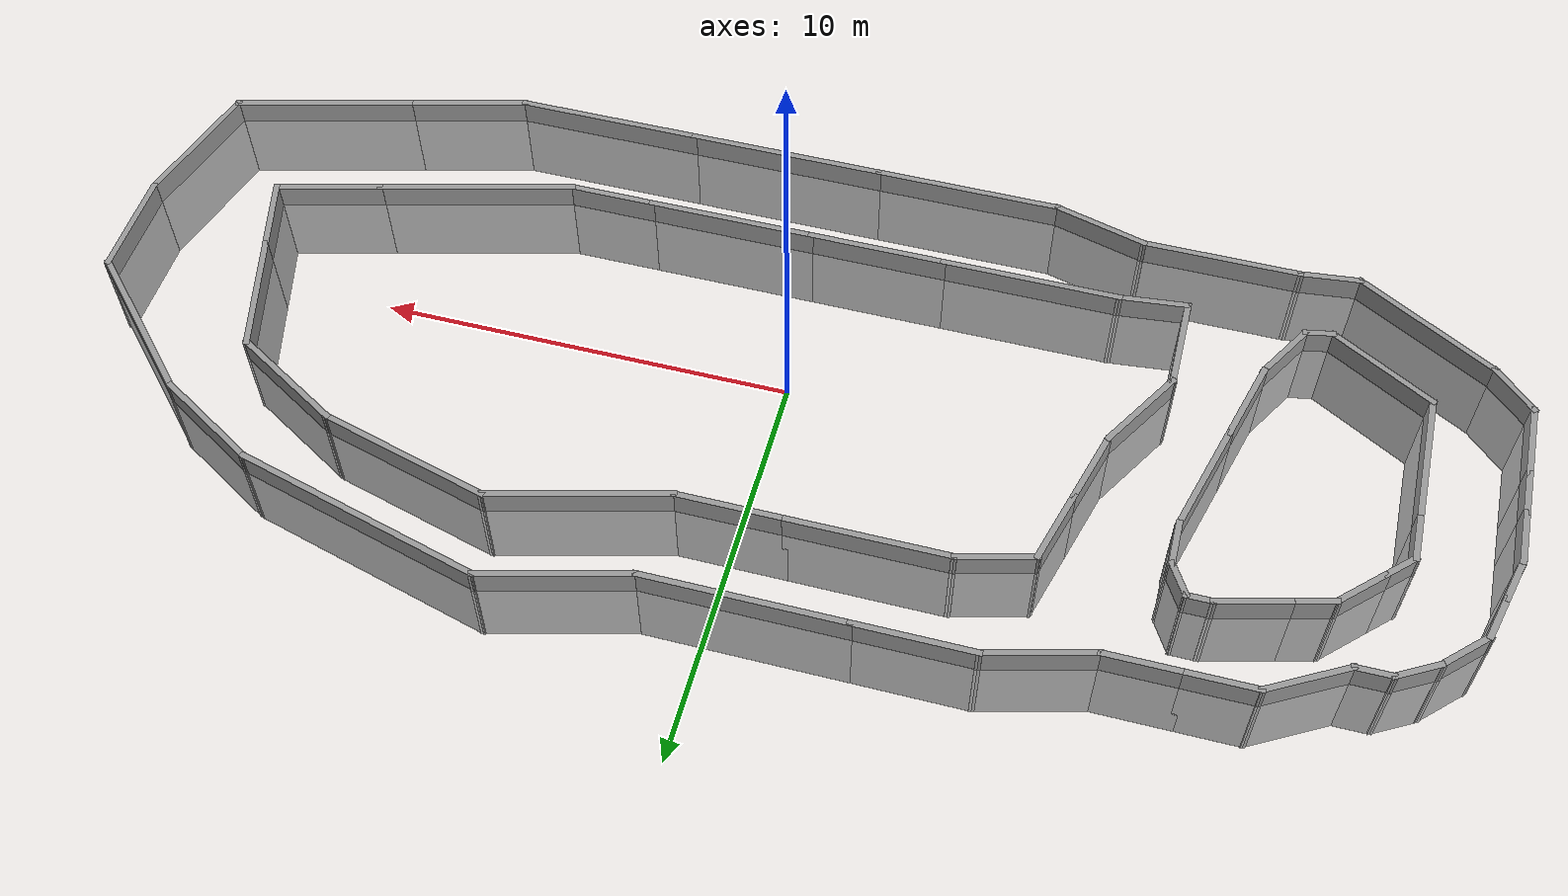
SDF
<sdf version="1.7">
 <world name="default">
  <light name="sun" type="directional">
   <pose>0 0 10 0 -0 0</pose>
   <diffuse>0.8 0.8 0.8 1</diffuse>
   <specular>0.2 0.2 0.2 1</specular>
   <attenuation>
    <range>1000</range>
    <constant>0.9</constant>
    <linear>0.01</linear>
    <quadratic>0.001</quadratic>
   </attenuation>
   <direction>-0.5 0.1 -0.9</direction>
   <spot><inner_angle>0</inner_angle><outer_angle>0</outer_angle><falloff>0</falloff></spot>
  </light>
  <model name="ground_plane">
   <static>1</static>
   <link name="link">
    <collision name="collision">
     <geometry><plane><normal>0 0 1</normal><size>100 100</size></plane></geometry>
     <surface>
      <contact><collide_bitmask>65535</collide_bitmask></contact>
      <friction><ode><mu>100</mu><mu2>50</mu2></ode></friction>
     </surface>
    </collision>
    <visual name="visual">
     <cast_shadows>0</cast_shadows>
     <geometry><plane><normal>0 0 1</normal><size>100 100</size></plane></geometry>
     <material>
      <script><uri>file://media/materials/scripts/gazebo.material</uri><name>Gazebo/Grey</name></script>
     </material>
    </visual>
   </link>
  </model>
  <gravity>0 0 -9.8</gravity>
  <magnetic_field>6e-06 2.3e-05 -4.2e-05</magnetic_field>
  <atmosphere type="adiabatic"/>
  <physics type="ode">
   <max_step_size>0.001</max_step_size>
   <real_time_factor>1</real_time_factor>
   <real_time_update_rate>1000</real_time_update_rate>
  </physics>
  <scene><ambient>0.4 0.4 0.4 1</ambient><background>0.7 0.7 0.7 1</background><shadows>1</shadows></scene>
  <spherical_coordinates>
   <surface_model>EARTH_WGS84</surface_model>
   <latitude_deg>0</latitude_deg>
   <longitude_deg>0</longitude_deg>
   <elevation>0</elevation>
   <heading_deg>0</heading_deg>
  </spherical_coordinates>
  <model name="shortcut2">
   <pose>-0.004909 0.02554 -1.92703 0 -0 0</pose>
   <link name="Wall_0">
    <collision name="Wall_0_Collision">
     <geometry><box><size>4 0.15 2.5</size></box></geometry>
     <pose>0 0 1.25 0 -0 0</pose>
    </collision>
    <visual name="Wall_0_Visual">
     <pose>0 0 1.25 0 -0 0</pose>
     <geometry><box><size>4 0.15 2.5</size></box></geometry>
     <material>
      <script><uri>file://media/materials/scripts/gazebo.material</uri><name>Gazebo/Grey</name></script>
      <ambient>1 1 1 1</ambient>
     </material>
     <meta><layer>0</layer></meta>
    </visual>
    <pose>-14.3592 -5.54717 0 0 -0 2.61799</pose>
   </link>
   <link name="Wall_1">
    <collision name="Wall_1_Collision">
     <geometry><box><size>1.5 0.15 2.5</size></box></geometry>
     <pose>0 0 1.25 0 -0 0</pose>
    </collision>
    <visual name="Wall_1_Visual">
     <pose>0 0 1.25 0 -0 0</pose>
     <geometry><box><size>1.5 0.15 2.5</size></box></geometry>
     <material>
      <script><uri>file://media/materials/scripts/gazebo.material</uri><name>Gazebo/Grey</name></script>
      <ambient>1 1 1 1</ambient>
     </material>
     <meta><layer>0</layer></meta>
    </visual>
    <pose>-16.5036 -4.10737 0 0 -0 2.35619</pose>
   </link>
   <link name="Wall_10">
    <collision name="Wall_10_Collision">
     <geometry><box><size>2.25 0.15 2.5</size></box></geometry>
     <pose>0 0 1.25 0 -0 0</pose>
    </collision>
    <visual name="Wall_10_Visual">
     <pose>0 0 1.25 0 -0 0</pose>
     <geometry><box><size>2.25 0.15 2.5</size></box></geometry>
     <material>
      <script><uri>file://media/materials/scripts/gazebo.material</uri><name>Gazebo/Grey</name></script>
      <ambient>1 1 1 1</ambient>
     </material>
     <meta><layer>0</layer></meta>
    </visual>
    <pose>-12.7449 4.82456 0 0 -0 0.523599</pose>
   </link>
   <link name="Wall_11">
    <collision name="Wall_11_Collision">
     <geometry><box><size>1.75 0.15 2.5</size></box></geometry>
     <pose>0 0 1.25 0 -0 0</pose>
    </collision>
    <visual name="Wall_11_Visual">
     <pose>0 0 1.25 0 -0 0</pose>
     <geometry><box><size>1.75 0.15 2.5</size></box></geometry>
     <material>
      <script><uri>file://media/materials/scripts/gazebo.material</uri><name>Gazebo/Grey</name></script>
      <ambient>1 1 1 1</ambient>
     </material>
     <meta><layer>0</layer></meta>
    </visual>
    <pose>-11.0356 5.34956 0 0 -0 0</pose>
   </link>
   <link name="Wall_12">
    <collision name="Wall_12_Collision">
     <geometry><box><size>2 0.15 2.5</size></box></geometry>
     <pose>0 0 1.25 0 -0 0</pose>
    </collision>
    <visual name="Wall_12_Visual">
     <pose>0 0 1.25 0 -0 0</pose>
     <geometry><box><size>2 0.15 2.5</size></box></geometry>
     <material>
      <script><uri>file://media/materials/scripts/gazebo.material</uri><name>Gazebo/Grey</name></script>
      <ambient>1 1 1 1</ambient>
     </material>
     <meta><layer>0</layer></meta>
    </visual>
    <pose>-9.31059 5.34956 0 0 -0 0</pose>
   </link>
   <link name="Wall_13">
    <collision name="Wall_13_Collision">
     <geometry><box><size>2.75 0.15 2.5</size></box></geometry>
     <pose>0 0 1.25 0 -0 0</pose>
    </collision>
    <visual name="Wall_13_Visual">
     <pose>0 0 1.25 0 -0 0</pose>
     <geometry><box><size>2.75 0.15 2.5</size></box></geometry>
     <material>
      <script><uri>file://media/materials/scripts/gazebo.material</uri><name>Gazebo/Grey</name></script>
      <ambient>1 1 1 1</ambient>
     </material>
     <meta><layer>0</layer></meta>
    </visual>
    <pose>-7.12989 5.68602 0 0 -0 0.261799</pose>
   </link>
   <link name="Wall_14">
    <collision name="Wall_14_Collision">
     <geometry><box><size>3 0.15 2.5</size></box></geometry>
     <pose>0 0 1.25 0 -0 0</pose>
    </collision>
    <visual name="Wall_14_Visual">
     <pose>0 0 1.25 0 -0 0</pose>
     <geometry><box><size>3 0.15 2.5</size></box></geometry>
     <material>
      <script><uri>file://media/materials/scripts/gazebo.material</uri><name>Gazebo/Grey</name></script>
      <ambient>1 1 1 1</ambient>
     </material>
     <meta><layer>0</layer></meta>
    </visual>
    <pose>-4.44918 6.02248 0 0 -0 0</pose>
   </link>
   <link name="Wall_15">
    <collision name="Wall_15_Collision">
     <geometry><box><size>5 0.15 2.5</size></box></geometry>
     <pose>0 0 1.25 0 -0 0</pose>
    </collision>
    <visual name="Wall_15_Visual">
     <pose>0 0 1.25 0 -0 0</pose>
     <geometry><box><size>5 0.15 2.5</size></box></geometry>
     <material>
      <script><uri>file://media/materials/scripts/gazebo.material</uri><name>Gazebo/Grey</name></script>
      <ambient>1 1 1 1</ambient>
     </material>
     <meta><layer>0</layer></meta>
    </visual>
    <pose>-0.599183 6.02248 0 0 -0 0</pose>
   </link>
   <link name="Wall_16">
    <collision name="Wall_16_Collision">
     <geometry><box><size>3.75 0.15 2.5</size></box></geometry>
     <pose>0 0 1.25 0 -0 0</pose>
    </collision>
    <visual name="Wall_16_Visual">
     <pose>0 0 1.25 0 -0 0</pose>
     <geometry><box><size>3.75 0.15 2.5</size></box></geometry>
     <material>
      <script><uri>file://media/materials/scripts/gazebo.material</uri><name>Gazebo/Grey</name></script>
      <ambient>1 1 1 1</ambient>
     </material>
     <meta><layer>0</layer></meta>
    </visual>
    <pose>3.56448 6.48836 0 0 -0 0.261799</pose>
   </link>
   <link name="Wall_17">
    <collision name="Wall_17_Collision">
     <geometry><box><size>6.5 0.15 2.5</size></box></geometry>
     <pose>0 0 1.25 0 -0 0</pose>
    </collision>
    <visual name="Wall_17_Visual">
     <pose>0 0 1.25 0 -0 0</pose>
     <geometry><box><size>6.5 0.15 2.5</size></box></geometry>
     <material>
      <script><uri>file://media/materials/scripts/gazebo.material</uri><name>Gazebo/Grey</name></script>
      <ambient>1 1 1 1</ambient>
     </material>
     <meta><layer>0</layer></meta>
    </visual>
    <pose>8.36997 6.13248 0 0 -0 -0.261799</pose>
   </link>
   <link name="Wall_18">
    <collision name="Wall_18_Collision">
     <geometry><box><size>3 0.15 2.5</size></box></geometry>
     <pose>0 0 1.25 0 -0 0</pose>
    </collision>
    <visual name="Wall_18_Visual">
     <pose>0 0 1.25 0 -0 0</pose>
     <geometry><box><size>3 0.15 2.5</size></box></geometry>
     <material>
      <script><uri>file://media/materials/scripts/gazebo.material</uri><name>Gazebo/Grey</name></script>
      <ambient>1 1 1 1</ambient>
     </material>
     <meta><layer>0</layer></meta>
    </visual>
    <pose>12.6709 4.59823 0 0 -0 -0.523599</pose>
   </link>
   <link name="Wall_19">
    <collision name="Wall_19_Collision">
     <geometry><box><size>4.5 0.15 2.5</size></box></geometry>
     <pose>0 0 1.25 0 -0 0</pose>
    </collision>
    <visual name="Wall_19_Visual">
     <pose>0 0 1.25 0 -0 0</pose>
     <geometry><box><size>4.5 0.15 2.5</size></box></geometry>
     <material>
      <script><uri>file://media/materials/scripts/gazebo.material</uri><name>Gazebo/Grey</name></script>
      <ambient>1 1 1 1</ambient>
     </material>
     <meta><layer>0</layer></meta>
    </visual>
    <pose>15.4429 2.34778 0 0 -0 -0.785398</pose>
   </link>
   <link name="Wall_2">
    <collision name="Wall_2_Collision">
     <geometry><box><size>2 0.15 2.5</size></box></geometry>
     <pose>0 0 1.25 0 -0 0</pose>
    </collision>
    <visual name="Wall_2_Visual">
     <pose>0 0 1.25 0 -0 0</pose>
     <geometry><box><size>2 0.15 2.5</size></box></geometry>
     <material>
      <script><uri>file://media/materials/scripts/gazebo.material</uri><name>Gazebo/Grey</name></script>
      <ambient>1 1 1 1</ambient>
     </material>
     <meta><layer>0</layer></meta>
    </visual>
    <pose>-16.9809 -2.70507 0 0 -0 1.5708</pose>
   </link>
   <link name="Wall_20">
    <collision name="Wall_20_Collision">
     <geometry><box><size>2.75 0.15 2.5</size></box></geometry>
     <pose>0 0 1.25 0 -0 0</pose>
    </collision>
    <visual name="Wall_20_Visual">
     <pose>0 0 1.25 0 -0 0</pose>
     <geometry><box><size>2.75 0.15 2.5</size></box></geometry>
     <material>
      <script><uri>file://media/materials/scripts/gazebo.material</uri><name>Gazebo/Grey</name></script>
      <ambient>1 1 1 1</ambient>
     </material>
     <meta><layer>0</layer></meta>
    </visual>
    <pose>16.9809 -0.490181 0 0 -0 -1.5708</pose>
   </link>
   <link name="Wall_21">
    <collision name="Wall_21_Collision">
     <geometry><box><size>3.5 0.15 2.5</size></box></geometry>
     <pose>0 0 1.25 0 -0 0</pose>
    </collision>
    <visual name="Wall_21_Visual">
     <pose>0 0 1.25 0 -0 0</pose>
     <geometry><box><size>3.5 0.15 2.5</size></box></geometry>
     <material>
      <script><uri>file://media/materials/scripts/gazebo.material</uri><name>Gazebo/Grey</name></script>
      <ambient>1 1 1 1</ambient>
     </material>
     <meta><layer>0</layer></meta>
    </visual>
    <pose>16.5473 -3.40811 0 0 -0 -1.8326</pose>
   </link>
   <link name="Wall_22">
    <collision name="Wall_22_Collision">
     <geometry><box><size>4.75 0.15 2.5</size></box></geometry>
     <pose>0 0 1.25 0 -0 0</pose>
    </collision>
    <visual name="Wall_22_Visual">
     <pose>0 0 1.25 0 -0 0</pose>
     <geometry><box><size>4.75 0.15 2.5</size></box></geometry>
     <material>
      <script><uri>file://media/materials/scripts/gazebo.material</uri><name>Gazebo/Grey</name></script>
      <ambient>1 1 1 1</ambient>
     </material>
     <meta><layer>0</layer></meta>
    </visual>
    <pose>13.8922 -5.62132 0 0 -0 -2.87979</pose>
   </link>
   <link name="Wall_23">
    <collision name="Wall_23_Collision">
     <geometry><box><size>3 0.15 2.5</size></box></geometry>
     <pose>0 0 1.25 0 -0 0</pose>
    </collision>
    <visual name="Wall_23_Visual">
     <pose>0 0 1.25 0 -0 0</pose>
     <geometry><box><size>3 0.15 2.5</size></box></geometry>
     <material>
      <script><uri>file://media/materials/scripts/gazebo.material</uri><name>Gazebo/Grey</name></script>
      <ambient>1 1 1 1</ambient>
     </material>
     <meta><layer>0</layer></meta>
    </visual>
    <pose>10.2941 -6.58542 0 0 -0 -2.87979</pose>
   </link>
   <link name="Wall_24">
    <collision name="Wall_24_Collision">
     <geometry><box><size>4.75 0.15 2.5</size></box></geometry>
     <pose>0 0 1.25 0 -0 0</pose>
    </collision>
    <visual name="Wall_24_Visual">
     <pose>0 0 1.25 0 -0 0</pose>
     <geometry><box><size>4.75 0.15 2.5</size></box></geometry>
     <material>
      <script><uri>file://media/materials/scripts/gazebo.material</uri><name>Gazebo/Grey</name></script>
      <ambient>1 1 1 1</ambient>
     </material>
     <meta><layer>0</layer></meta>
    </visual>
    <pose>6.61768 -6.95423 0 0 -0 3.14159</pose>
   </link>
   <link name="Wall_25">
    <collision name="Wall_25_Collision">
     <geometry><box><size>5 0.15 2.5</size></box></geometry>
     <pose>0 0 1.25 0 -0 0</pose>
    </collision>
    <visual name="Wall_25_Visual">
     <pose>0 0 1.25 0 -0 0</pose>
     <geometry><box><size>5 0.15 2.5</size></box></geometry>
     <material>
      <script><uri>file://media/materials/scripts/gazebo.material</uri><name>Gazebo/Grey</name></script>
      <ambient>1 1 1 1</ambient>
     </material>
     <meta><layer>0</layer></meta>
    </visual>
    <pose>1.89268 -6.95423 0 0 -0 3.14159</pose>
   </link>
   <link name="Wall_26">
    <collision name="Wall_26_Collision">
     <geometry><box><size>4.75 0.15 2.5</size></box></geometry>
     <pose>0 0 1.25 0 -0 0</pose>
    </collision>
    <visual name="Wall_26_Visual">
     <pose>0 0 1.25 0 -0 0</pose>
     <geometry><box><size>4.75 0.15 2.5</size></box></geometry>
     <material>
      <script><uri>file://media/materials/scripts/gazebo.material</uri><name>Gazebo/Grey</name></script>
      <ambient>1 1 1 1</ambient>
     </material>
     <meta><layer>0</layer></meta>
    </visual>
    <pose>-2.83232 -6.95423 0 0 -0 3.14159</pose>
   </link>
   <link name="Wall_27">
    <collision name="Wall_27_Collision">
     <geometry><box><size>2.5 0.15 2.5</size></box></geometry>
     <pose>0 0 1.25 0 -0 0</pose>
    </collision>
    <visual name="Wall_27_Visual">
     <pose>0 0 1.25 0 -0 0</pose>
     <geometry><box><size>2.5 0.15 2.5</size></box></geometry>
     <material>
      <script><uri>file://media/materials/scripts/gazebo.material</uri><name>Gazebo/Grey</name></script>
      <ambient>1 1 1 1</ambient>
     </material>
     <meta><layer>0</layer></meta>
    </visual>
    <pose>-6.26729 -6.65012 0 0 -0 2.87979</pose>
   </link>
   <link name="Wall_28">
    <collision name="Wall_28_Collision">
     <geometry><box><size>4 0.15 2.5</size></box></geometry>
     <pose>0 0 1.25 0 -0 0</pose>
    </collision>
    <visual name="Wall_28_Visual">
     <pose>0 0 1.25 0 -0 0</pose>
     <geometry><box><size>4 0.15 2.5</size></box></geometry>
     <material>
      <script><uri>file://media/materials/scripts/gazebo.material</uri><name>Gazebo/Grey</name></script>
      <ambient>1 1 1 1</ambient>
     </material>
     <meta><layer>0</layer></meta>
    </visual>
    <pose>-9.32725 -6.34601 0 0 -0 3.14159</pose>
   </link>
   <link name="Wall_29">
    <collision name="Wall_29_Collision">
     <geometry><box><size>1.5991 0.15 2.5</size></box></geometry>
     <pose>0 0 1.25 0 -0 0</pose>
    </collision>
    <visual name="Wall_29_Visual">
     <pose>0 0 1.25 0 -0 0</pose>
     <geometry><box><size>1.5991 0.15 2.5</size></box></geometry>
     <material>
      <script><uri>file://media/materials/scripts/gazebo.material</uri><name>Gazebo/Grey</name></script>
      <ambient>1 1 1 1</ambient>
     </material>
     <meta><layer>0</layer></meta>
    </visual>
    <pose>-11.9722 -6.42784 0 0 -0 -3.02841</pose>
   </link>
   <link name="Wall_3">
    <collision name="Wall_3_Collision">
     <geometry><box><size>1.25 0.15 2.5</size></box></geometry>
     <pose>0 0 1.25 0 -0 0</pose>
    </collision>
    <visual name="Wall_3_Visual">
     <pose>0 0 1.25 0 -0 0</pose>
     <geometry><box><size>1.25 0.15 2.5</size></box></geometry>
     <material>
      <script><uri>file://media/materials/scripts/gazebo.material</uri><name>Gazebo/Grey</name></script>
      <ambient>1 1 1 1</ambient>
     </material>
     <meta><layer>0</layer></meta>
    </visual>
    <pose>-16.9809 -1.23008 0 0 -0 1.5708</pose>
   </link>
   <link name="Wall_31">
    <collision name="Wall_31_Collision">
     <geometry><box><size>3 0.15 2.5</size></box></geometry>
     <pose>0 0 1.25 0 -0 0</pose>
    </collision>
    <visual name="Wall_31_Visual">
     <pose>0 0 1.25 0 -0 0</pose>
     <geometry><box><size>3 0.15 2.5</size></box></geometry>
     <material>
      <script><uri>file://media/materials/scripts/gazebo.material</uri><name>Gazebo/Grey</name></script>
      <ambient>1 1 1 1</ambient>
     </material>
     <meta><layer>0</layer></meta>
    </visual>
    <pose>-13.4558 -3.96889 0 0 -0 2.61799</pose>
   </link>
   <link name="Wall_32">
    <collision name="Wall_32_Collision">
     <geometry><box><size>3.5 0.15 2.5</size></box></geometry>
     <pose>0 0 1.25 0 -0 0</pose>
    </collision>
    <visual name="Wall_32_Visual">
     <pose>0 0 1.25 0 -0 0</pose>
     <geometry><box><size>3.5 0.15 2.5</size></box></geometry>
     <material>
      <script><uri>file://media/materials/scripts/gazebo.material</uri><name>Gazebo/Grey</name></script>
      <ambient>1 1 1 1</ambient>
     </material>
     <meta><layer>0</layer></meta>
    </visual>
    <pose>-14.6899 -1.58139 0 0 -0 1.5708</pose>
   </link>
   <link name="Wall_33">
    <collision name="Wall_33_Collision">
     <geometry><box><size>1.25 0.15 2.5</size></box></geometry>
     <pose>0 0 1.25 0 -0 0</pose>
    </collision>
    <visual name="Wall_33_Visual">
     <pose>0 0 1.25 0 -0 0</pose>
     <geometry><box><size>1.25 0.15 2.5</size></box></geometry>
     <material>
      <script><uri>file://media/materials/scripts/gazebo.material</uri><name>Gazebo/Grey</name></script>
      <ambient>1 1 1 1</ambient>
     </material>
     <meta><layer>0</layer></meta>
    </visual>
    <pose>-14.6899 0.643613 0 0 -0 1.5708</pose>
   </link>
   <link name="Wall_34">
    <collision name="Wall_34_Collision">
     <geometry><box><size>1 0.15 2.5</size></box></geometry>
     <pose>0 0 1.25 0 -0 0</pose>
    </collision>
    <visual name="Wall_34_Visual">
     <pose>0 0 1.25 0 -0 0</pose>
     <geometry><box><size>1 0.15 2.5</size></box></geometry>
     <material>
      <script><uri>file://media/materials/scripts/gazebo.material</uri><name>Gazebo/Grey</name></script>
      <ambient>1 1 1 1</ambient>
     </material>
     <meta><layer>0</layer></meta>
    </visual>
    <pose>-14.3893 1.49413 0 0 -0 0.785398</pose>
   </link>
   <link name="Wall_35">
    <collision name="Wall_35_Collision">
     <geometry><box><size>1.5 0.15 2.5</size></box></geometry>
     <pose>0 0 1.25 0 -0 0</pose>
    </collision>
    <visual name="Wall_35_Visual">
     <pose>0 0 1.25 0 -0 0</pose>
     <geometry><box><size>1.5 0.15 2.5</size></box></geometry>
     <material>
      <script><uri>file://media/materials/scripts/gazebo.material</uri><name>Gazebo/Grey</name></script>
      <ambient>1 1 1 1</ambient>
     </material>
     <meta><layer>0</layer></meta>
    </visual>
    <pose>-13.6115 2.27195 0 0 -0 0.785398</pose>
   </link>
   <link name="Wall_36">
    <collision name="Wall_36_Collision">
     <geometry><box><size>1 0.15 2.5</size></box></geometry>
     <pose>0 0 1.25 0 -0 0</pose>
    </collision>
    <visual name="Wall_36_Visual">
     <pose>0 0 1.25 0 -0 0</pose>
     <geometry><box><size>1 0.15 2.5</size></box></geometry>
     <material>
      <script><uri>file://media/materials/scripts/gazebo.material</uri><name>Gazebo/Grey</name></script>
      <ambient>1 1 1 1</ambient>
     </material>
     <meta><layer>0</layer></meta>
    </visual>
    <pose>-12.7237 2.85925 0 0 -0 0.261799</pose>
   </link>
   <link name="Wall_37">
    <collision name="Wall_37_Collision">
     <geometry><box><size>2 0.15 2.5</size></box></geometry>
     <pose>0 0 1.25 0 -0 0</pose>
    </collision>
    <visual name="Wall_37_Visual">
     <pose>0 0 1.25 0 -0 0</pose>
     <geometry><box><size>2 0.15 2.5</size></box></geometry>
     <material>
      <script><uri>file://media/materials/scripts/gazebo.material</uri><name>Gazebo/Grey</name></script>
      <ambient>1 1 1 1</ambient>
     </material>
     <meta><layer>0</layer></meta>
    </visual>
    <pose>-11.4197 3.20865 0 0 -0 0.261799</pose>
   </link>
   <link name="Wall_38">
    <collision name="Wall_38_Collision">
     <geometry><box><size>0.75 0.15 2.5</size></box></geometry>
     <pose>0 0 1.25 0 -0 0</pose>
    </collision>
    <visual name="Wall_38_Visual">
     <pose>0 0 1.25 0 -0 0</pose>
     <geometry><box><size>0.75 0.15 2.5</size></box></geometry>
     <material>
      <script><uri>file://media/materials/scripts/gazebo.material</uri><name>Gazebo/Grey</name></script>
      <ambient>1 1 1 1</ambient>
     </material>
     <meta><layer>0</layer></meta>
    </visual>
    <pose>-10.2262 3.44806 0 0 -0 0</pose>
   </link>
   <link name="Wall_39">
    <collision name="Wall_39_Collision">
     <geometry><box><size>1 0.15 2.5</size></box></geometry>
     <pose>0 0 1.25 0 -0 0</pose>
    </collision>
    <visual name="Wall_39_Visual">
     <pose>0 0 1.25 0 -0 0</pose>
     <geometry><box><size>1 0.15 2.5</size></box></geometry>
     <material>
      <script><uri>file://media/materials/scripts/gazebo.material</uri><name>Gazebo/Grey</name></script>
      <ambient>1 1 1 1</ambient>
     </material>
     <meta><layer>0</layer></meta>
    </visual>
    <pose>-9.71372 3.08 0 0 -0 -1.0472</pose>
   </link>
   <link name="Wall_4">
    <collision name="Wall_4_Collision">
     <geometry><box><size>1.5 0.15 2.5</size></box></geometry>
     <pose>0 0 1.25 0 -0 0</pose>
    </collision>
    <visual name="Wall_4_Visual">
     <pose>0 0 1.25 0 -0 0</pose>
     <geometry><box><size>1.5 0.15 2.5</size></box></geometry>
     <material>
      <script><uri>file://media/materials/scripts/gazebo.material</uri><name>Gazebo/Grey</name></script>
      <ambient>1 1 1 1</ambient>
     </material>
     <meta><layer>0</layer></meta>
    </visual>
    <pose>-16.9809 -0.005075 0 0 -0 1.5708</pose>
   </link>
   <link name="Wall_40">
    <collision name="Wall_40_Collision">
     <geometry><box><size>1.25 0.15 2.5</size></box></geometry>
     <pose>0 0 1.25 0 -0 0</pose>
    </collision>
    <visual name="Wall_40_Visual">
     <pose>0 0 1.25 0 -0 0</pose>
     <geometry><box><size>1.25 0.15 2.5</size></box></geometry>
     <material>
      <script><uri>file://media/materials/scripts/gazebo.material</uri><name>Gazebo/Grey</name></script>
      <ambient>1 1 1 1</ambient>
     </material>
     <meta><layer>0</layer></meta>
    </visual>
    <pose>-9.50122 2.16194 0 0 -0 -1.5708</pose>
   </link>
   <link name="Wall_41">
    <collision name="Wall_41_Collision">
     <geometry><box><size>3 0.15 2.5</size></box></geometry>
     <pose>0 0 1.25 0 -0 0</pose>
    </collision>
    <visual name="Wall_41_Visual">
     <pose>0 0 1.25 0 -0 0</pose>
     <geometry><box><size>3 0.15 2.5</size></box></geometry>
     <material>
      <script><uri>file://media/materials/scripts/gazebo.material</uri><name>Gazebo/Grey</name></script>
      <ambient>1 1 1 1</ambient>
     </material>
     <meta><layer>0</layer></meta>
    </visual>
    <pose>-9.87003 0.235493 0 0 -0 -1.8326</pose>
   </link>
   <link name="Wall_42">
    <collision name="Wall_42_Collision">
     <geometry><box><size>2.25 0.15 2.5</size></box></geometry>
     <pose>0 0 1.25 0 -0 0</pose>
    </collision>
    <visual name="Wall_42_Visual">
     <pose>0 0 1.25 0 -0 0</pose>
     <geometry><box><size>2.25 0.15 2.5</size></box></geometry>
     <material>
      <script><uri>file://media/materials/scripts/gazebo.material</uri><name>Gazebo/Grey</name></script>
      <ambient>1 1 1 1</ambient>
     </material>
     <meta><layer>0</layer></meta>
    </visual>
    <pose>-10.5106 -2.15517 0 0 -0 -1.8326</pose>
   </link>
   <link name="Wall_43">
    <collision name="Wall_43_Collision">
     <geometry><box><size>1.75 0.15 2.5</size></box></geometry>
     <pose>0 0 1.25 0 -0 0</pose>
    </collision>
    <visual name="Wall_43_Visual">
     <pose>0 0 1.25 0 -0 0</pose>
     <geometry><box><size>1.75 0.15 2.5</size></box></geometry>
     <material>
      <script><uri>file://media/materials/scripts/gazebo.material</uri><name>Gazebo/Grey</name></script>
      <ambient>1 1 1 1</ambient>
     </material>
     <meta><layer>0</layer></meta>
    </visual>
    <pose>-11.1824 -3.86222 0 0 -0 -2.0944</pose>
   </link>
   <link name="Wall_44">
    <collision name="Wall_44_Collision">
     <geometry><box><size>0.801674 0.15 2.5</size></box></geometry>
     <pose>0 0 1.25 0 -0 0</pose>
    </collision>
    <visual name="Wall_44_Visual">
     <pose>0 0 1.25 0 -0 0</pose>
     <geometry><box><size>0.801674 0.15 2.5</size></box></geometry>
     <material>
      <script><uri>file://media/materials/scripts/gazebo.material</uri><name>Gazebo/Grey</name></script>
      <ambient>1 1 1 1</ambient>
     </material>
     <meta><layer>0</layer></meta>
    </visual>
    <pose>-11.902 -4.61821 0 0 -0 -2.94647</pose>
   </link>
   <link name="Wall_46">
    <collision name="Wall_46_Collision">
     <geometry><box><size>2.5 0.15 2.5</size></box></geometry>
     <pose>0 0 1.25 0 -0 0</pose>
    </collision>
    <visual name="Wall_46_Visual">
     <pose>0 0 1.25 0 -0 0</pose>
     <geometry><box><size>2.5 0.15 2.5</size></box></geometry>
     <material>
      <script><uri>file://media/materials/scripts/gazebo.material</uri><name>Gazebo/Grey</name></script>
      <ambient>1 1 1 1</ambient>
     </material>
     <meta><layer>0</layer></meta>
    </visual>
    <pose>-8.74953 -3.48108 0 0 -0 1.5708</pose>
   </link>
   <link name="Wall_47">
    <collision name="Wall_47_Collision">
     <geometry><box><size>2.5 0.15 2.5</size></box></geometry>
     <pose>0 0 1.25 0 -0 0</pose>
    </collision>
    <visual name="Wall_47_Visual">
     <pose>0 0 1.25 0 -0 0</pose>
     <geometry><box><size>2.5 0.15 2.5</size></box></geometry>
     <material>
      <script><uri>file://media/materials/scripts/gazebo.material</uri><name>Gazebo/Grey</name></script>
      <ambient>1 1 1 1</ambient>
     </material>
     <meta><layer>0</layer></meta>
    </visual>
    <pose>-8.16203 -1.28849 0 0 -0 1.0472</pose>
   </link>
   <link name="Wall_48">
    <collision name="Wall_48_Collision">
     <geometry><box><size>2 0.15 2.5</size></box></geometry>
     <pose>0 0 1.25 0 -0 0</pose>
    </collision>
    <visual name="Wall_48_Visual">
     <pose>0 0 1.25 0 -0 0</pose>
     <geometry><box><size>2 0.15 2.5</size></box></geometry>
     <material>
      <script><uri>file://media/materials/scripts/gazebo.material</uri><name>Gazebo/Grey</name></script>
      <ambient>1 1 1 1</ambient>
     </material>
     <meta><layer>0</layer></meta>
    </visual>
    <pose>-7.33512 0.622567 0 0 -0 1.309</pose>
   </link>
   <link name="Wall_49">
    <collision name="Wall_49_Collision">
     <geometry><box><size>2 0.15 2.5</size></box></geometry>
     <pose>0 0 1.25 0 -0 0</pose>
    </collision>
    <visual name="Wall_49_Visual">
     <pose>0 0 1.25 0 -0 0</pose>
     <geometry><box><size>2 0.15 2.5</size></box></geometry>
     <material>
      <script><uri>file://media/materials/scripts/gazebo.material</uri><name>Gazebo/Grey</name></script>
      <ambient>1 1 1 1</ambient>
     </material>
     <meta><layer>0</layer></meta>
    </visual>
    <pose>-6.85631 2.40953 0 0 -0 1.309</pose>
   </link>
   <link name="Wall_5">
    <collision name="Wall_5_Collision">
     <geometry><box><size>1.25 0.15 2.5</size></box></geometry>
     <pose>0 0 1.25 0 -0 0</pose>
    </collision>
    <visual name="Wall_5_Visual">
     <pose>0 0 1.25 0 -0 0</pose>
     <geometry><box><size>1.25 0.15 2.5</size></box></geometry>
     <material>
      <script><uri>file://media/materials/scripts/gazebo.material</uri><name>Gazebo/Grey</name></script>
      <ambient>1 1 1 1</ambient>
     </material>
     <meta><layer>0</layer></meta>
    </visual>
    <pose>-16.8385 1.20118 0 0 -0 1.309</pose>
   </link>
   <link name="Wall_50">
    <collision name="Wall_50_Collision">
     <geometry><box><size>2 0.15 2.5</size></box></geometry>
     <pose>0 0 1.25 0 -0 0</pose>
    </collision>
    <visual name="Wall_50_Visual">
     <pose>0 0 1.25 0 -0 0</pose>
     <geometry><box><size>2 0.15 2.5</size></box></geometry>
     <material>
      <script><uri>file://media/materials/scripts/gazebo.material</uri><name>Gazebo/Grey</name></script>
      <ambient>1 1 1 1</ambient>
     </material>
     <meta><layer>0</layer></meta>
    </visual>
    <pose>-5.72342 3.54242 0 0 -0 0.261799</pose>
   </link>
   <link name="Wall_51">
    <collision name="Wall_51_Collision">
     <geometry><box><size>4 0.15 2.5</size></box></geometry>
     <pose>0 0 1.25 0 -0 0</pose>
    </collision>
    <visual name="Wall_51_Visual">
     <pose>0 0 1.25 0 -0 0</pose>
     <geometry><box><size>4 0.15 2.5</size></box></geometry>
     <material>
      <script><uri>file://media/materials/scripts/gazebo.material</uri><name>Gazebo/Grey</name></script>
      <ambient>1 1 1 1</ambient>
     </material>
     <meta><layer>0</layer></meta>
    </visual>
    <pose>-2.90494 3.78183 0 0 -0 0</pose>
   </link>
   <link name="Wall_52">
    <collision name="Wall_52_Collision">
     <geometry><box><size>2.75 0.15 2.5</size></box></geometry>
     <pose>0 0 1.25 0 -0 0</pose>
    </collision>
    <visual name="Wall_52_Visual">
     <pose>0 0 1.25 0 -0 0</pose>
     <geometry><box><size>2.75 0.15 2.5</size></box></geometry>
     <material>
      <script><uri>file://media/materials/scripts/gazebo.material</uri><name>Gazebo/Grey</name></script>
      <ambient>1 1 1 1</ambient>
     </material>
     <meta><layer>0</layer></meta>
    </visual>
    <pose>0.320065 3.78183 0 0 -0 0</pose>
   </link>
   <link name="Wall_53">
    <collision name="Wall_53_Collision">
     <geometry><box><size>4.5 0.15 2.5</size></box></geometry>
     <pose>0 0 1.25 0 -0 0</pose>
    </collision>
    <visual name="Wall_53_Visual">
     <pose>0 0 1.25 0 -0 0</pose>
     <geometry><box><size>4.5 0.15 2.5</size></box></geometry>
     <material>
      <script><uri>file://media/materials/scripts/gazebo.material</uri><name>Gazebo/Grey</name></script>
      <ambient>1 1 1 1</ambient>
     </material>
     <meta><layer>0</layer></meta>
    </visual>
    <pose>3.72095 4.34476 0 0 -0 0.261799</pose>
   </link>
   <link name="Wall_54">
    <collision name="Wall_54_Collision">
     <geometry><box><size>4.5 0.15 2.5</size></box></geometry>
     <pose>0 0 1.25 0 -0 0</pose>
    </collision>
    <visual name="Wall_54_Visual">
     <pose>0 0 1.25 0 -0 0</pose>
     <geometry><box><size>4.5 0.15 2.5</size></box></geometry>
     <material>
      <script><uri>file://media/materials/scripts/gazebo.material</uri><name>Gazebo/Grey</name></script>
      <ambient>1 1 1 1</ambient>
     </material>
     <meta><layer>0</layer></meta>
    </visual>
    <pose>7.92273 4.34476 0 0 -0 -0.261799</pose>
   </link>
   <link name="Wall_55">
    <collision name="Wall_55_Collision">
     <geometry><box><size>3.25 0.15 2.5</size></box></geometry>
     <pose>0 0 1.25 0 -0 0</pose>
    </collision>
    <visual name="Wall_55_Visual">
     <pose>0 0 1.25 0 -0 0</pose>
     <geometry><box><size>3.25 0.15 2.5</size></box></geometry>
     <material>
      <script><uri>file://media/materials/scripts/gazebo.material</uri><name>Gazebo/Grey</name></script>
      <ambient>1 1 1 1</ambient>
     </material>
     <meta><layer>0</layer></meta>
    </visual>
    <pose>11.366 3.00683 0 0 -0 -0.523599</pose>
   </link>
   <link name="Wall_56">
    <collision name="Wall_56_Collision">
     <geometry><box><size>3.25 0.15 2.5</size></box></geometry>
     <pose>0 0 1.25 0 -0 0</pose>
    </collision>
    <visual name="Wall_56_Visual">
     <pose>0 0 1.25 0 -0 0</pose>
     <geometry><box><size>3.25 0.15 2.5</size></box></geometry>
     <material>
      <script><uri>file://media/materials/scripts/gazebo.material</uri><name>Gazebo/Grey</name></script>
      <ambient>1 1 1 1</ambient>
     </material>
     <meta><layer>0</layer></meta>
    </visual>
    <pose>13.1095 0.734641 0 0 -0 -1.309</pose>
   </link>
   <link name="Wall_57">
    <collision name="Wall_57_Collision">
     <geometry><box><size>2 0.15 2.5</size></box></geometry>
     <pose>0 0 1.25 0 -0 0</pose>
    </collision>
    <visual name="Wall_57_Visual">
     <pose>0 0 1.25 0 -0 0</pose>
     <geometry><box><size>2 0.15 2.5</size></box></geometry>
     <material>
      <script><uri>file://media/materials/scripts/gazebo.material</uri><name>Gazebo/Grey</name></script>
      <ambient>1 1 1 1</ambient>
     </material>
     <meta><layer>0</layer></meta>
    </visual>
    <pose>13.75 -1.65603 0 0 -0 -1.309</pose>
   </link>
   <link name="Wall_58">
    <collision name="Wall_58_Collision">
     <geometry><box><size>2.75 0.15 2.5</size></box></geometry>
     <pose>0 0 1.25 0 -0 0</pose>
    </collision>
    <visual name="Wall_58_Visual">
     <pose>0 0 1.25 0 -0 0</pose>
     <geometry><box><size>2.75 0.15 2.5</size></box></geometry>
     <material>
      <script><uri>file://media/materials/scripts/gazebo.material</uri><name>Gazebo/Grey</name></script>
      <ambient>1 1 1 1</ambient>
     </material>
     <meta><layer>0</layer></meta>
    </visual>
    <pose>12.7337 -2.88597 0 0 -0 -2.87979</pose>
   </link>
   <link name="Wall_59">
    <collision name="Wall_59_Collision">
     <geometry><box><size>5 0.15 2.5</size></box></geometry>
     <pose>0 0 1.25 0 -0 0</pose>
    </collision>
    <visual name="Wall_59_Visual">
     <pose>0 0 1.25 0 -0 0</pose>
     <geometry><box><size>5 0.15 2.5</size></box></geometry>
     <material>
      <script><uri>file://media/materials/scripts/gazebo.material</uri><name>Gazebo/Grey</name></script>
      <ambient>1 1 1 1</ambient>
     </material>
     <meta><layer>0</layer></meta>
    </visual>
    <pose>9.13568 -3.85007 0 0 -0 -2.87979</pose>
   </link>
   <link name="Wall_6">
    <collision name="Wall_6_Collision">
     <geometry><box><size>1.25 0.15 2.5</size></box></geometry>
     <pose>0 0 1.25 0 -0 0</pose>
    </collision>
    <visual name="Wall_6_Visual">
     <pose>0 0 1.25 0 -0 0</pose>
     <geometry><box><size>1.25 0.15 2.5</size></box></geometry>
     <material>
      <script><uri>file://media/materials/scripts/gazebo.material</uri><name>Gazebo/Grey</name></script>
      <ambient>1 1 1 1</ambient>
     </material>
     <meta><layer>0</layer></meta>
    </visual>
    <pose>-16.5538 2.2637 0 0 -0 1.309</pose>
   </link>
   <link name="Wall_60">
    <collision name="Wall_60_Collision">
     <geometry><box><size>2.25 0.15 2.5</size></box></geometry>
     <pose>0 0 1.25 0 -0 0</pose>
    </collision>
    <visual name="Wall_60_Visual">
     <pose>0 0 1.25 0 -0 0</pose>
     <geometry><box><size>2.25 0.15 2.5</size></box></geometry>
     <material>
      <script><uri>file://media/materials/scripts/gazebo.material</uri><name>Gazebo/Grey</name></script>
      <ambient>1 1 1 1</ambient>
     </material>
     <meta><layer>0</layer></meta>
    </visual>
    <pose>5.74331 -4.47771 0 0 -0 3.14159</pose>
   </link>
   <link name="Wall_61">
    <collision name="Wall_61_Collision">
     <geometry><box><size>4.25 0.15 2.5</size></box></geometry>
     <pose>0 0 1.25 0 -0 0</pose>
    </collision>
    <visual name="Wall_61_Visual">
     <pose>0 0 1.25 0 -0 0</pose>
     <geometry><box><size>4.25 0.15 2.5</size></box></geometry>
     <material>
      <script><uri>file://media/materials/scripts/gazebo.material</uri><name>Gazebo/Grey</name></script>
      <ambient>1 1 1 1</ambient>
     </material>
     <meta><layer>0</layer></meta>
    </visual>
    <pose>2.6433 -4.47771 0 0 -0 3.14159</pose>
   </link>
   <link name="Wall_62">
    <collision name="Wall_62_Collision">
     <geometry><box><size>3.5 0.15 2.5</size></box></geometry>
     <pose>0 0 1.25 0 -0 0</pose>
    </collision>
    <visual name="Wall_62_Visual">
     <pose>0 0 1.25 0 -0 0</pose>
     <geometry><box><size>3.5 0.15 2.5</size></box></geometry>
     <material>
      <script><uri>file://media/materials/scripts/gazebo.material</uri><name>Gazebo/Grey</name></script>
      <ambient>1 1 1 1</ambient>
     </material>
     <meta><layer>0</layer></meta>
    </visual>
    <pose>-1.0817 -4.47771 0 0 -0 3.14159</pose>
   </link>
   <link name="Wall_63">
    <collision name="Wall_63_Collision">
     <geometry><box><size>4.5 0.15 2.5</size></box></geometry>
     <pose>0 0 1.25 0 -0 0</pose>
    </collision>
    <visual name="Wall_63_Visual">
     <pose>0 0 1.25 0 -0 0</pose>
     <geometry><box><size>4.5 0.15 2.5</size></box></geometry>
     <material>
      <script><uri>file://media/materials/scripts/gazebo.material</uri><name>Gazebo/Grey</name></script>
      <ambient>1 1 1 1</ambient>
     </material>
     <meta><layer>0</layer></meta>
    </visual>
    <pose>-4.9317 -4.47771 0 0 -0 3.14159</pose>
   </link>
   <link name="Wall_64">
    <collision name="Wall_64_Collision">
     <geometry><box><size>1.80249 0.15 2.5</size></box></geometry>
     <pose>0 0 1.25 0 -0 0</pose>
    </collision>
    <visual name="Wall_64_Visual">
     <pose>0 0 1.25 0 -0 0</pose>
     <geometry><box><size>1.80249 0.15 2.5</size></box></geometry>
     <material>
      <script><uri>file://media/materials/scripts/gazebo.material</uri><name>Gazebo/Grey</name></script>
      <ambient>1 1 1 1</ambient>
     </material>
     <meta><layer>0</layer></meta>
    </visual>
    <pose>-7.92811 -4.56689 0 0 -0 -3.03344</pose>
   </link>
   <link name="Wall_7">
    <collision name="Wall_7_Collision">
     <geometry><box><size>1.5 0.15 2.5</size></box></geometry>
     <pose>0 0 1.25 0 -0 0</pose>
    </collision>
    <visual name="Wall_7_Visual">
     <pose>0 0 1.25 0 -0 0</pose>
     <geometry><box><size>1.5 0.15 2.5</size></box></geometry>
     <material>
      <script><uri>file://media/materials/scripts/gazebo.material</uri><name>Gazebo/Grey</name></script>
      <ambient>1 1 1 1</ambient>
     </material>
     <meta><layer>0</layer></meta>
    </visual>
    <pose>-15.9342 3.27226 0 0 -0 0.785398</pose>
   </link>
   <link name="Wall_8">
    <collision name="Wall_8_Collision">
     <geometry><box><size>1.25 0.15 2.5</size></box></geometry>
     <pose>0 0 1.25 0 -0 0</pose>
    </collision>
    <visual name="Wall_8_Visual">
     <pose>0 0 1.25 0 -0 0</pose>
     <geometry><box><size>1.25 0.15 2.5</size></box></geometry>
     <material>
      <script><uri>file://media/materials/scripts/gazebo.material</uri><name>Gazebo/Grey</name></script>
      <ambient>1 1 1 1</ambient>
     </material>
     <meta><layer>0</layer></meta>
    </visual>
    <pose>-14.9806 4.02456 0 0 -0 0.523599</pose>
   </link>
   <link name="Wall_9">
    <collision name="Wall_9_Collision">
     <geometry><box><size>1 0.15 2.5</size></box></geometry>
     <pose>0 0 1.25 0 -0 0</pose>
    </collision>
    <visual name="Wall_9_Visual">
     <pose>0 0 1.25 0 -0 0</pose>
     <geometry><box><size>1 0.15 2.5</size></box></geometry>
     <material>
      <script><uri>file://media/materials/scripts/gazebo.material</uri><name>Gazebo/Grey</name></script>
      <ambient>1 1 1 1</ambient>
     </material>
     <meta><layer>0</layer></meta>
    </visual>
    <pose>-14.0792 4.29956 0 0 -0 0</pose>
   </link>
   <static>1</static>
  </model>
 </world>
</sdf>
